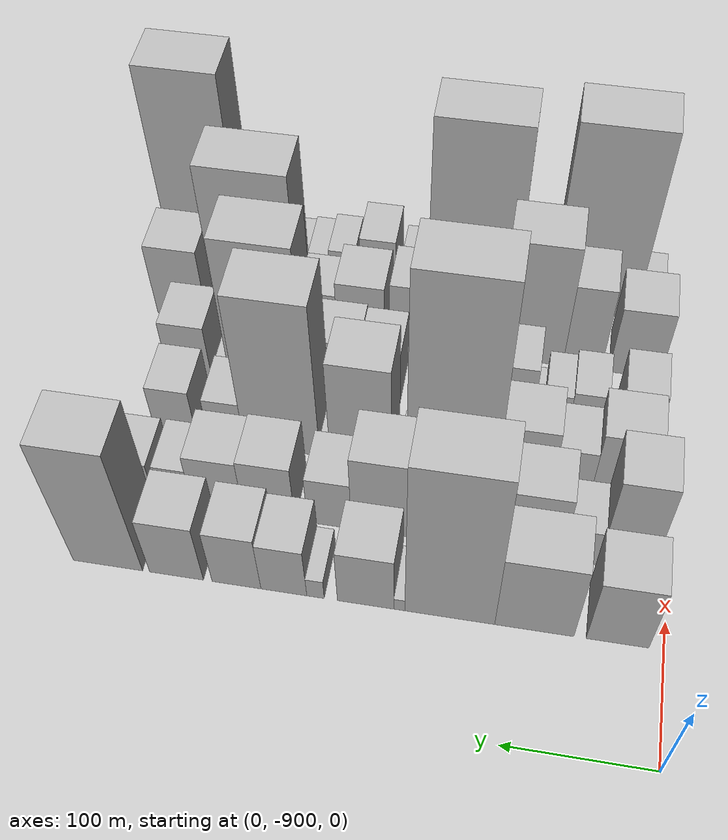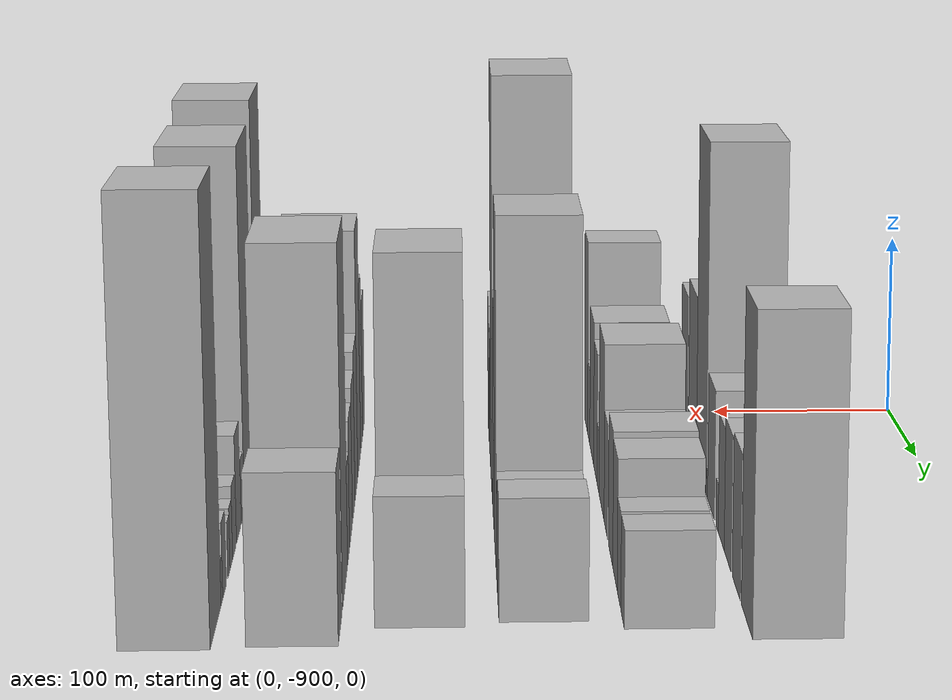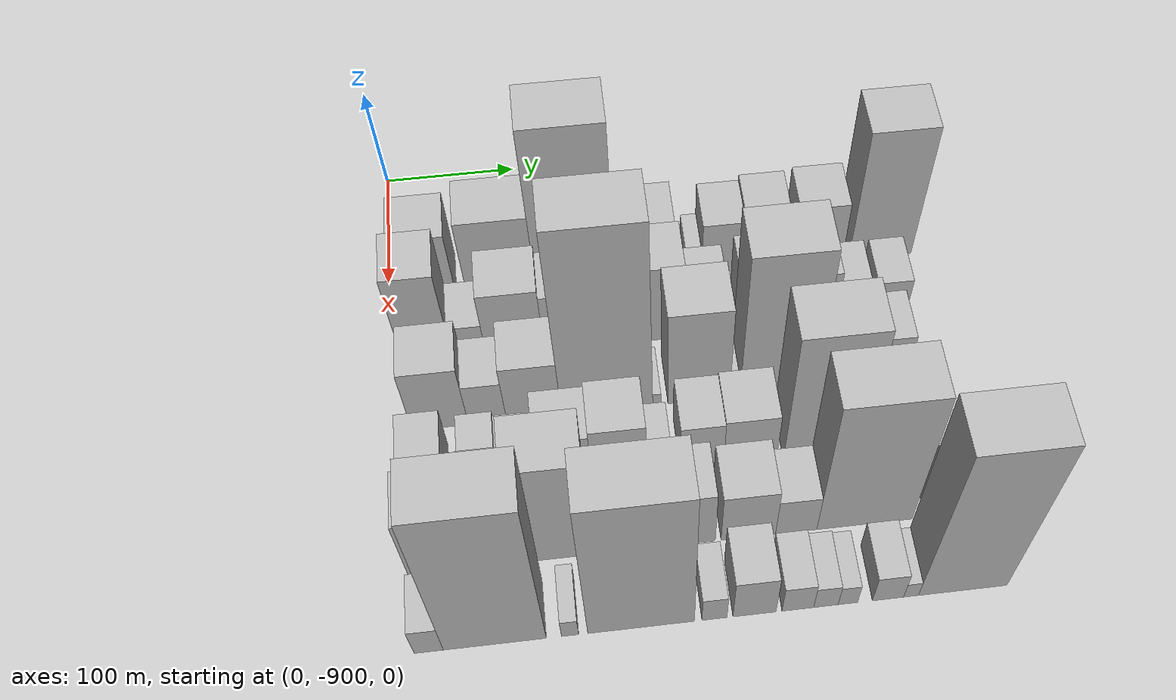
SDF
<sdf version="1.6">
 <world name="default">
  <model name="building_1">
   <static>1</static>
   <pose>100.0000 -869.5187 0 0.000000 0.000000 0.000000</pose>
   <link name="link">
    <pose>0 0 39.00 0 0 0</pose>
    <collision name="collision"><geometry><box><size>40.0000 40.9626 78.0000</size></box></geometry></collision>
    <visual name="visual">
     <cast_shadows>0</cast_shadows>
     <geometry><box><size>40.0000 40.9626 78.0000</size></box></geometry>
     <material>
      <script>
       <uri>model://HANNAS_wall/materials/scripts</uri>
       <uri>model://HANNAS_wall/materials/textures</uri>
       <name>vrc/HANNAS_wall</name>
      </script>
     </material>
    </visual>
   </link>
  </model>
  <model name="building_2">
   <static>1</static>
   <pose>100.0000 -814.8399 0 0.000000 0.000000 0.000000</pose>
   <link name="link">
    <pose>0 0 45.00 0 0 0</pose>
    <collision name="collision"><geometry><box><size>40.0000 52.3950 90.0000</size></box></geometry></collision>
    <visual name="visual">
     <cast_shadows>0</cast_shadows>
     <geometry><box><size>40.0000 52.3950 90.0000</size></box></geometry>
     <material>
      <script>
       <uri>model://HANNAS_wall/materials/scripts</uri>
       <uri>model://HANNAS_wall/materials/textures</uri>
       <name>vrc/HANNAS_wall</name>
      </script>
     </material>
    </visual>
   </link>
  </model>
  <model name="building_3">
   <static>1</static>
   <pose>100.0000 -758.5206 0 0.000000 0.000000 0.000000</pose>
   <link name="link">
    <pose>0 0 91.50 0 0 0</pose>
    <collision name="collision"><geometry><box><size>40.0000 60.2436 183.0000</size></box></geometry></collision>
    <visual name="visual">
     <cast_shadows>0</cast_shadows>
     <geometry><box><size>40.0000 60.2436 183.0000</size></box></geometry>
     <material>
      <script>
       <uri>model://HANNAS_wall/materials/scripts</uri>
       <uri>model://HANNAS_wall/materials/textures</uri>
       <name>vrc/HANNAS_wall</name>
      </script>
     </material>
    </visual>
   </link>
  </model>
  <model name="building_4">
   <static>1</static>
   <pose>100.0000 -724.6863 0 0.000000 0.000000 0.000000</pose>
   <link name="link">
    <pose>0 0 7.50 0 0 0</pose>
    <collision name="collision"><geometry><box><size>40.0000 7.4251 15.0000</size></box></geometry></collision>
    <visual name="visual">
     <cast_shadows>0</cast_shadows>
     <geometry><box><size>40.0000 7.4251 15.0000</size></box></geometry>
     <material>
      <script>
       <uri>model://HANNAS_wall/materials/scripts</uri>
       <uri>model://HANNAS_wall/materials/textures</uri>
       <name>vrc/HANNAS_wall</name>
      </script>
     </material>
    </visual>
   </link>
  </model>
  <model name="building_5">
   <static>1</static>
   <pose>100.0000 -701.8458 0 0.000000 0.000000 0.000000</pose>
   <link name="link">
    <pose>0 0 33.00 0 0 0</pose>
    <collision name="collision"><geometry><box><size>40.0000 38.2559 66.0000</size></box></geometry></collision>
    <visual name="visual">
     <cast_shadows>0</cast_shadows>
     <geometry><box><size>40.0000 38.2559 66.0000</size></box></geometry>
     <material>
      <script>
       <uri>model://HANNAS_wall/materials/scripts</uri>
       <uri>model://HANNAS_wall/materials/textures</uri>
       <name>vrc/HANNAS_wall</name>
      </script>
     </material>
    </visual>
   </link>
  </model>
  <model name="building_6">
   <static>1</static>
   <pose>100.0000 -667.7672 0 0.000000 0.000000 0.000000</pose>
   <link name="link">
    <pose>0 0 12.00 0 0 0</pose>
    <collision name="collision"><geometry><box><size>40.0000 11.9012 24.0000</size></box></geometry></collision>
    <visual name="visual">
     <cast_shadows>0</cast_shadows>
     <geometry><box><size>40.0000 11.9012 24.0000</size></box></geometry>
     <material>
      <script>
       <uri>model://HANNAS_wall/materials/scripts</uri>
       <uri>model://HANNAS_wall/materials/textures</uri>
       <name>vrc/HANNAS_wall</name>
      </script>
     </material>
    </visual>
   </link>
  </model>
  <model name="building_7">
   <static>1</static>
   <pose>100.0000 -646.0357 0 0.000000 0.000000 0.000000</pose>
   <link name="link">
    <pose>0 0 30.00 0 0 0</pose>
    <collision name="collision"><geometry><box><size>40.0000 31.5618 60.0000</size></box></geometry></collision>
    <visual name="visual">
     <cast_shadows>0</cast_shadows>
     <geometry><box><size>40.0000 31.5618 60.0000</size></box></geometry>
     <material>
      <script>
       <uri>model://HANNAS_wall/materials/scripts</uri>
       <uri>model://HANNAS_wall/materials/textures</uri>
       <name>vrc/HANNAS_wall</name>
      </script>
     </material>
    </visual>
   </link>
  </model>
  <model name="building_8">
   <static>1</static>
   <pose>100.0000 -613.3074 0 0.000000 0.000000 0.000000</pose>
   <link name="link">
    <pose>0 0 33.00 0 0 0</pose>
    <collision name="collision"><geometry><box><size>40.0000 33.8947 66.0000</size></box></geometry></collision>
    <visual name="visual">
     <cast_shadows>0</cast_shadows>
     <geometry><box><size>40.0000 33.8947 66.0000</size></box></geometry>
     <material>
      <script>
       <uri>model://HANNAS_wall/materials/scripts</uri>
       <uri>model://HANNAS_wall/materials/textures</uri>
       <name>vrc/HANNAS_wall</name>
      </script>
     </material>
    </visual>
   </link>
  </model>
  <model name="building_9">
   <static>1</static>
   <pose>100.0000 -571.5191 0 0.000000 0.000000 0.000000</pose>
   <link name="link">
    <pose>0 0 34.50 0 0 0</pose>
    <collision name="collision"><geometry><box><size>40.0000 37.6818 69.0000</size></box></geometry></collision>
    <visual name="visual">
     <cast_shadows>0</cast_shadows>
     <geometry><box><size>40.0000 37.6818 69.0000</size></box></geometry>
     <material>
      <script>
       <uri>model://HANNAS_wall/materials/scripts</uri>
       <uri>model://HANNAS_wall/materials/textures</uri>
       <name>vrc/HANNAS_wall</name>
      </script>
     </material>
    </visual>
   </link>
  </model>
  <model name="building_10">
   <static>1</static>
   <pose>100.0000 -523.1911 0 0.000000 0.000000 0.000000</pose>
   <link name="link">
    <pose>0 0 73.50 0 0 0</pose>
    <collision name="collision"><geometry><box><size>40.0000 48.9742 147.0000</size></box></geometry></collision>
    <visual name="visual">
     <cast_shadows>0</cast_shadows>
     <geometry><box><size>40.0000 48.9742 147.0000</size></box></geometry>
     <material>
      <script>
       <uri>model://HANNAS_wall/materials/scripts</uri>
       <uri>model://HANNAS_wall/materials/textures</uri>
       <name>vrc/HANNAS_wall</name>
      </script>
     </material>
    </visual>
   </link>
  </model>
  <model name="building_50">
   <static>1</static>
   <pose>155.0000 -871.8700 0 0.000000 0.000000 0.000000</pose>
   <link name="link">
    <pose>0 0 54.00 0 0 0</pose>
    <collision name="collision"><geometry><box><size>40.0000 36.2600 108.0000</size></box></geometry></collision>
    <visual name="visual">
     <cast_shadows>0</cast_shadows>
     <geometry><box><size>40.0000 36.2600 108.0000</size></box></geometry>
     <material>
      <script>
       <uri>model://HANNAS_wall/materials/scripts</uri>
       <uri>model://HANNAS_wall/materials/textures</uri>
       <name>vrc/HANNAS_wall</name>
      </script>
     </material>
    </visual>
   </link>
  </model>
  <model name="building_51">
   <static>1</static>
   <pose>155.0000 -841.4327 0 0.000000 0.000000 0.000000</pose>
   <link name="link">
    <pose>0 0 21.00 0 0 0</pose>
    <collision name="collision"><geometry><box><size>40.0000 24.6146 42.0000</size></box></geometry></collision>
    <visual name="visual">
     <cast_shadows>0</cast_shadows>
     <geometry><box><size>40.0000 24.6146 42.0000</size></box></geometry>
     <material>
      <script>
       <uri>model://HANNAS_wall/materials/scripts</uri>
       <uri>model://HANNAS_wall/materials/textures</uri>
       <name>vrc/HANNAS_wall</name>
      </script>
     </material>
    </visual>
   </link>
  </model>
  <model name="building_52">
   <static>1</static>
   <pose>155.0000 -807.6888 0 0.000000 0.000000 0.000000</pose>
   <link name="link">
    <pose>0 0 39.00 0 0 0</pose>
    <collision name="collision"><geometry><box><size>40.0000 42.8733 78.0000</size></box></geometry></collision>
    <visual name="visual">
     <cast_shadows>0</cast_shadows>
     <geometry><box><size>40.0000 42.8733 78.0000</size></box></geometry>
     <material>
      <script>
       <uri>model://HANNAS_wall/materials/scripts</uri>
       <uri>model://HANNAS_wall/materials/textures</uri>
       <name>vrc/HANNAS_wall</name>
      </script>
     </material>
    </visual>
   </link>
  </model>
  <model name="building_53">
   <static>1</static>
   <pose>155.0000 -768.3859 0 0.000000 0.000000 0.000000</pose>
   <link name="link">
    <pose>0 0 34.50 0 0 0</pose>
    <collision name="collision"><geometry><box><size>40.0000 35.7324 69.0000</size></box></geometry></collision>
    <visual name="visual">
     <cast_shadows>0</cast_shadows>
     <geometry><box><size>40.0000 35.7324 69.0000</size></box></geometry>
     <material>
      <script>
       <uri>model://HANNAS_wall/materials/scripts</uri>
       <uri>model://HANNAS_wall/materials/textures</uri>
       <name>vrc/HANNAS_wall</name>
      </script>
     </material>
    </visual>
   </link>
  </model>
  <model name="building_54">
   <static>1</static>
   <pose>155.0000 -740.6411 0 0.000000 0.000000 0.000000</pose>
   <link name="link">
    <pose>0 0 16.50 0 0 0</pose>
    <collision name="collision"><geometry><box><size>40.0000 19.7573 33.0000</size></box></geometry></collision>
    <visual name="visual">
     <cast_shadows>0</cast_shadows>
     <geometry><box><size>40.0000 19.7573 33.0000</size></box></geometry>
     <material>
      <script>
       <uri>model://HANNAS_wall/materials/scripts</uri>
       <uri>model://HANNAS_wall/materials/textures</uri>
       <name>vrc/HANNAS_wall</name>
      </script>
     </material>
    </visual>
   </link>
  </model>
  <model name="building_55">
   <static>1</static>
   <pose>155.0000 -706.4413 0 0.000000 0.000000 0.000000</pose>
   <link name="link">
    <pose>0 0 45.00 0 0 0</pose>
    <collision name="collision"><geometry><box><size>40.0000 48.6423 90.0000</size></box></geometry></collision>
    <visual name="visual">
     <cast_shadows>0</cast_shadows>
     <geometry><box><size>40.0000 48.6423 90.0000</size></box></geometry>
     <material>
      <script>
       <uri>model://HANNAS_wall/materials/scripts</uri>
       <uri>model://HANNAS_wall/materials/textures</uri>
       <name>vrc/HANNAS_wall</name>
      </script>
     </material>
    </visual>
   </link>
  </model>
  <model name="building_56">
   <static>1</static>
   <pose>155.0000 -666.5677 0 0.000000 0.000000 0.000000</pose>
   <link name="link">
    <pose>0 0 28.50 0 0 0</pose>
    <collision name="collision"><geometry><box><size>40.0000 31.1049 57.0000</size></box></geometry></collision>
    <visual name="visual">
     <cast_shadows>0</cast_shadows>
     <geometry><box><size>40.0000 31.1049 57.0000</size></box></geometry>
     <material>
      <script>
       <uri>model://HANNAS_wall/materials/scripts</uri>
       <uri>model://HANNAS_wall/materials/textures</uri>
       <name>vrc/HANNAS_wall</name>
      </script>
     </material>
    </visual>
   </link>
  </model>
  <model name="building_57">
   <static>1</static>
   <pose>155.0000 -623.4818 0 0.000000 0.000000 0.000000</pose>
   <link name="link">
    <pose>0 0 33.00 0 0 0</pose>
    <collision name="collision"><geometry><box><size>40.0000 37.0669 66.0000</size></box></geometry></collision>
    <visual name="visual">
     <cast_shadows>0</cast_shadows>
     <geometry><box><size>40.0000 37.0669 66.0000</size></box></geometry>
     <material>
      <script>
       <uri>model://HANNAS_wall/materials/scripts</uri>
       <uri>model://HANNAS_wall/materials/textures</uri>
       <name>vrc/HANNAS_wall</name>
      </script>
     </material>
    </visual>
   </link>
  </model>
  <model name="building_58">
   <static>1</static>
   <pose>155.0000 -586.4904 0 0.000000 0.000000 0.000000</pose>
   <link name="link">
    <pose>0 0 31.50 0 0 0</pose>
    <collision name="collision"><geometry><box><size>40.0000 36.9159 63.0000</size></box></geometry></collision>
    <visual name="visual">
     <cast_shadows>0</cast_shadows>
     <geometry><box><size>40.0000 36.9159 63.0000</size></box></geometry>
     <material>
      <script>
       <uri>model://HANNAS_wall/materials/scripts</uri>
       <uri>model://HANNAS_wall/materials/textures</uri>
       <name>vrc/HANNAS_wall</name>
      </script>
     </material>
    </visual>
   </link>
  </model>
  <model name="building_59">
   <static>1</static>
   <pose>155.0000 -556.2455 0 0.000000 0.000000 0.000000</pose>
   <link name="link">
    <pose>0 0 22.50 0 0 0</pose>
    <collision name="collision"><geometry><box><size>40.0000 23.5738 45.0000</size></box></geometry></collision>
    <visual name="visual">
     <cast_shadows>0</cast_shadows>
     <geometry><box><size>40.0000 23.5738 45.0000</size></box></geometry>
     <material>
      <script>
       <uri>model://HANNAS_wall/materials/scripts</uri>
       <uri>model://HANNAS_wall/materials/textures</uri>
       <name>vrc/HANNAS_wall</name>
      </script>
     </material>
    </visual>
   </link>
  </model>
  <model name="building_60">
   <static>1</static>
   <pose>155.0000 -527.4854 0 0.000000 0.000000 0.000000</pose>
   <link name="link">
    <pose>0 0 22.50 0 0 0</pose>
    <collision name="collision"><geometry><box><size>40.0000 25.9465 45.0000</size></box></geometry></collision>
    <visual name="visual">
     <cast_shadows>0</cast_shadows>
     <geometry><box><size>40.0000 25.9465 45.0000</size></box></geometry>
     <material>
      <script>
       <uri>model://HANNAS_wall/materials/scripts</uri>
       <uri>model://HANNAS_wall/materials/textures</uri>
       <name>vrc/HANNAS_wall</name>
      </script>
     </material>
    </visual>
   </link>
  </model>
  <model name="building_101">
   <static>1</static>
   <pose>210.0000 -864.8608 0 0.000000 0.000000 0.000000</pose>
   <link name="link">
    <pose>0 0 37.50 0 0 0</pose>
    <collision name="collision"><geometry><box><size>40.0000 40.2783 75.0000</size></box></geometry></collision>
    <visual name="visual">
     <cast_shadows>0</cast_shadows>
     <geometry><box><size>40.0000 40.2783 75.0000</size></box></geometry>
     <material>
      <script>
       <uri>model://HANNAS_wall/materials/scripts</uri>
       <uri>model://HANNAS_wall/materials/textures</uri>
       <name>vrc/HANNAS_wall</name>
      </script>
     </material>
    </visual>
   </link>
  </model>
  <model name="building_102">
   <static>1</static>
   <pose>210.0000 -831.0557 0 0.000000 0.000000 0.000000</pose>
   <link name="link">
    <pose>0 0 25.50 0 0 0</pose>
    <collision name="collision"><geometry><box><size>40.0000 27.3321 51.0000</size></box></geometry></collision>
    <visual name="visual">
     <cast_shadows>0</cast_shadows>
     <geometry><box><size>40.0000 27.3321 51.0000</size></box></geometry>
     <material>
      <script>
       <uri>model://HANNAS_wall/materials/scripts</uri>
       <uri>model://HANNAS_wall/materials/textures</uri>
       <name>vrc/HANNAS_wall</name>
      </script>
     </material>
    </visual>
   </link>
  </model>
  <model name="building_103">
   <static>1</static>
   <pose>210.0000 -797.6632 0 0.000000 0.000000 0.000000</pose>
   <link name="link">
    <pose>0 0 34.50 0 0 0</pose>
    <collision name="collision"><geometry><box><size>40.0000 39.4527 69.0000</size></box></geometry></collision>
    <visual name="visual">
     <cast_shadows>0</cast_shadows>
     <geometry><box><size>40.0000 39.4527 69.0000</size></box></geometry>
     <material>
      <script>
       <uri>model://HANNAS_wall/materials/scripts</uri>
       <uri>model://HANNAS_wall/materials/textures</uri>
       <name>vrc/HANNAS_wall</name>
      </script>
     </material>
    </visual>
   </link>
  </model>
  <model name="building_104">
   <static>1</static>
   <pose>210.0000 -745.0322 0 0.000000 0.000000 0.000000</pose>
   <link name="link">
    <pose>0 0 109.50 0 0 0</pose>
    <collision name="collision"><geometry><box><size>40.0000 65.8093 219.0000</size></box></geometry></collision>
    <visual name="visual">
     <cast_shadows>0</cast_shadows>
     <geometry><box><size>40.0000 65.8093 219.0000</size></box></geometry>
     <material>
      <script>
       <uri>model://HANNAS_wall/materials/scripts</uri>
       <uri>model://HANNAS_wall/materials/textures</uri>
       <name>vrc/HANNAS_wall</name>
      </script>
     </material>
    </visual>
   </link>
  </model>
  <model name="building_105">
   <static>1</static>
   <pose>210.0000 -709.1058 0 0.000000 0.000000 0.000000</pose>
   <link name="link">
    <pose>0 0 7.50 0 0 0</pose>
    <collision name="collision"><geometry><box><size>40.0000 6.0436 15.0000</size></box></geometry></collision>
    <visual name="visual">
     <cast_shadows>0</cast_shadows>
     <geometry><box><size>40.0000 6.0436 15.0000</size></box></geometry>
     <material>
      <script>
       <uri>model://HANNAS_wall/materials/scripts</uri>
       <uri>model://HANNAS_wall/materials/textures</uri>
       <name>vrc/HANNAS_wall</name>
      </script>
     </material>
    </visual>
   </link>
  </model>
  <model name="building_106">
   <static>1</static>
   <pose>210.0000 -678.6502 0 0.000000 0.000000 0.000000</pose>
   <link name="link">
    <pose>0 0 57.00 0 0 0</pose>
    <collision name="collision"><geometry><box><size>40.0000 44.8677 114.0000</size></box></geometry></collision>
    <visual name="visual">
     <cast_shadows>0</cast_shadows>
     <geometry><box><size>40.0000 44.8677 114.0000</size></box></geometry>
     <material>
      <script>
       <uri>model://HANNAS_wall/materials/scripts</uri>
       <uri>model://HANNAS_wall/materials/textures</uri>
       <name>vrc/HANNAS_wall</name>
      </script>
     </material>
    </visual>
   </link>
  </model>
  <model name="building_107">
   <static>1</static>
   <pose>210.0000 -652.4173 0 0.000000 0.000000 0.000000</pose>
   <link name="link">
    <pose>0 0 9.00 0 0 0</pose>
    <collision name="collision"><geometry><box><size>40.0000 7.5981 18.0000</size></box></geometry></collision>
    <visual name="visual">
     <cast_shadows>0</cast_shadows>
     <geometry><box><size>40.0000 7.5981 18.0000</size></box></geometry>
     <material>
      <script>
       <uri>model://HANNAS_wall/materials/scripts</uri>
       <uri>model://HANNAS_wall/materials/textures</uri>
       <name>vrc/HANNAS_wall</name>
      </script>
     </material>
    </visual>
   </link>
  </model>
  <model name="building_108">
   <static>1</static>
   <pose>210.0000 -620.5702 0 0.000000 0.000000 0.000000</pose>
   <link name="link">
    <pose>0 0 85.50 0 0 0</pose>
    <collision name="collision"><geometry><box><size>40.0000 56.0961 171.0000</size></box></geometry></collision>
    <visual name="visual">
     <cast_shadows>0</cast_shadows>
     <geometry><box><size>40.0000 56.0961 171.0000</size></box></geometry>
     <material>
      <script>
       <uri>model://HANNAS_wall/materials/scripts</uri>
       <uri>model://HANNAS_wall/materials/textures</uri>
       <name>vrc/HANNAS_wall</name>
      </script>
     </material>
    </visual>
   </link>
  </model>
  <model name="building_109">
   <static>1</static>
   <pose>210.0000 -579.2036 0 0.000000 0.000000 0.000000</pose>
   <link name="link">
    <pose>0 0 25.50 0 0 0</pose>
    <collision name="collision"><geometry><box><size>40.0000 26.6370 51.0000</size></box></geometry></collision>
    <visual name="visual">
     <cast_shadows>0</cast_shadows>
     <geometry><box><size>40.0000 26.6370 51.0000</size></box></geometry>
     <material>
      <script>
       <uri>model://HANNAS_wall/materials/scripts</uri>
       <uri>model://HANNAS_wall/materials/textures</uri>
       <name>vrc/HANNAS_wall</name>
      </script>
     </material>
    </visual>
   </link>
  </model>
  <model name="building_110">
   <static>1</static>
   <pose>210.0000 -541.3025 0 0.000000 0.000000 0.000000</pose>
   <link name="link">
    <pose>0 0 28.50 0 0 0</pose>
    <collision name="collision"><geometry><box><size>40.0000 31.1652 57.0000</size></box></geometry></collision>
    <visual name="visual">
     <cast_shadows>0</cast_shadows>
     <geometry><box><size>40.0000 31.1652 57.0000</size></box></geometry>
     <material>
      <script>
       <uri>model://HANNAS_wall/materials/scripts</uri>
       <uri>model://HANNAS_wall/materials/textures</uri>
       <name>vrc/HANNAS_wall</name>
      </script>
     </material>
    </visual>
   </link>
  </model>
  <model name="building_150">
   <static>1</static>
   <pose>265.0000 -874.9586 0 0.000000 0.000000 0.000000</pose>
   <link name="link">
    <pose>0 0 25.50 0 0 0</pose>
    <collision name="collision"><geometry><box><size>40.0000 30.0829 51.0000</size></box></geometry></collision>
    <visual name="visual">
     <cast_shadows>0</cast_shadows>
     <geometry><box><size>40.0000 30.0829 51.0000</size></box></geometry>
     <material>
      <script>
       <uri>model://HANNAS_wall/materials/scripts</uri>
       <uri>model://HANNAS_wall/materials/textures</uri>
       <name>vrc/HANNAS_wall</name>
      </script>
     </material>
    </visual>
   </link>
  </model>
  <model name="building_151">
   <static>1</static>
   <pose>265.0000 -837.3926 0 0.000000 0.000000 0.000000</pose>
   <link name="link">
    <pose>0 0 21.00 0 0 0</pose>
    <collision name="collision"><geometry><box><size>40.0000 25.0490 42.0000</size></box></geometry></collision>
    <visual name="visual">
     <cast_shadows>0</cast_shadows>
     <geometry><box><size>40.0000 25.0490 42.0000</size></box></geometry>
     <material>
      <script>
       <uri>model://HANNAS_wall/materials/scripts</uri>
       <uri>model://HANNAS_wall/materials/textures</uri>
       <name>vrc/HANNAS_wall</name>
      </script>
     </material>
    </visual>
   </link>
  </model>
  <model name="building_152">
   <static>1</static>
   <pose>265.0000 -814.8458 0 0.000000 0.000000 0.000000</pose>
   <link name="link">
    <pose>0 0 18.00 0 0 0</pose>
    <collision name="collision"><geometry><box><size>40.0000 20.0446 36.0000</size></box></geometry></collision>
    <visual name="visual">
     <cast_shadows>0</cast_shadows>
     <geometry><box><size>40.0000 20.0446 36.0000</size></box></geometry>
     <material>
      <script>
       <uri>model://HANNAS_wall/materials/scripts</uri>
       <uri>model://HANNAS_wall/materials/textures</uri>
       <name>vrc/HANNAS_wall</name>
      </script>
     </material>
    </visual>
   </link>
  </model>
  <model name="building_153">
   <static>1</static>
   <pose>265.0000 -801.4315 0 0.000000 0.000000 0.000000</pose>
   <link name="link">
    <pose>0 0 7.50 0 0 0</pose>
    <collision name="collision"><geometry><box><size>40.0000 6.7841 15.0000</size></box></geometry></collision>
    <visual name="visual">
     <cast_shadows>0</cast_shadows>
     <geometry><box><size>40.0000 6.7841 15.0000</size></box></geometry>
     <material>
      <script>
       <uri>model://HANNAS_wall/materials/scripts</uri>
       <uri>model://HANNAS_wall/materials/textures</uri>
       <name>vrc/HANNAS_wall</name>
      </script>
     </material>
    </visual>
   </link>
  </model>
  <model name="building_154">
   <static>1</static>
   <pose>265.0000 -779.5476 0 0.000000 0.000000 0.000000</pose>
   <link name="link">
    <pose>0 0 31.50 0 0 0</pose>
    <collision name="collision"><geometry><box><size>40.0000 36.9836 63.0000</size></box></geometry></collision>
    <visual name="visual">
     <cast_shadows>0</cast_shadows>
     <geometry><box><size>40.0000 36.9836 63.0000</size></box></geometry>
     <material>
      <script>
       <uri>model://HANNAS_wall/materials/scripts</uri>
       <uri>model://HANNAS_wall/materials/textures</uri>
       <name>vrc/HANNAS_wall</name>
      </script>
     </material>
    </visual>
   </link>
  </model>
  <model name="building_155">
   <static>1</static>
   <pose>265.0000 -741.6447 0 0.000000 0.000000 0.000000</pose>
   <link name="link">
    <pose>0 0 34.50 0 0 0</pose>
    <collision name="collision"><geometry><box><size>40.0000 38.8221 69.0000</size></box></geometry></collision>
    <visual name="visual">
     <cast_shadows>0</cast_shadows>
     <geometry><box><size>40.0000 38.8221 69.0000</size></box></geometry>
     <material>
      <script>
       <uri>model://HANNAS_wall/materials/scripts</uri>
       <uri>model://HANNAS_wall/materials/textures</uri>
       <name>vrc/HANNAS_wall</name>
      </script>
     </material>
    </visual>
   </link>
  </model>
  <model name="building_156">
   <static>1</static>
   <pose>265.0000 -713.5278 0 0.000000 0.000000 0.000000</pose>
   <link name="link">
    <pose>0 0 15.00 0 0 0</pose>
    <collision name="collision"><geometry><box><size>40.0000 17.4118 30.0000</size></box></geometry></collision>
    <visual name="visual">
     <cast_shadows>0</cast_shadows>
     <geometry><box><size>40.0000 17.4118 30.0000</size></box></geometry>
     <material>
      <script>
       <uri>model://HANNAS_wall/materials/scripts</uri>
       <uri>model://HANNAS_wall/materials/textures</uri>
       <name>vrc/HANNAS_wall</name>
      </script>
     </material>
    </visual>
   </link>
  </model>
  <model name="building_157">
   <static>1</static>
   <pose>265.0000 -683.5769 0 0.000000 0.000000 0.000000</pose>
   <link name="link">
    <pose>0 0 30.00 0 0 0</pose>
    <collision name="collision"><geometry><box><size>40.0000 30.4899 60.0000</size></box></geometry></collision>
    <visual name="visual">
     <cast_shadows>0</cast_shadows>
     <geometry><box><size>40.0000 30.4899 60.0000</size></box></geometry>
     <material>
      <script>
       <uri>model://HANNAS_wall/materials/scripts</uri>
       <uri>model://HANNAS_wall/materials/textures</uri>
       <name>vrc/HANNAS_wall</name>
      </script>
     </material>
    </visual>
   </link>
  </model>
  <model name="building_158">
   <static>1</static>
   <pose>265.0000 -649.5910 0 0.000000 0.000000 0.000000</pose>
   <link name="link">
    <pose>0 0 31.50 0 0 0</pose>
    <collision name="collision"><geometry><box><size>40.0000 37.4817 63.0000</size></box></geometry></collision>
    <visual name="visual">
     <cast_shadows>0</cast_shadows>
     <geometry><box><size>40.0000 37.4817 63.0000</size></box></geometry>
     <material>
      <script>
       <uri>model://HANNAS_wall/materials/scripts</uri>
       <uri>model://HANNAS_wall/materials/textures</uri>
       <name>vrc/HANNAS_wall</name>
      </script>
     </material>
    </visual>
   </link>
  </model>
  <model name="building_159">
   <static>1</static>
   <pose>265.0000 -597.0273 0 0.000000 0.000000 0.000000</pose>
   <link name="link">
    <pose>0 0 79.50 0 0 0</pose>
    <collision name="collision"><geometry><box><size>40.0000 57.6457 159.0000</size></box></geometry></collision>
    <visual name="visual">
     <cast_shadows>0</cast_shadows>
     <geometry><box><size>40.0000 57.6457 159.0000</size></box></geometry>
     <material>
      <script>
       <uri>model://HANNAS_wall/materials/scripts</uri>
       <uri>model://HANNAS_wall/materials/textures</uri>
       <name>vrc/HANNAS_wall</name>
      </script>
     </material>
    </visual>
   </link>
  </model>
  <model name="building_160">
   <static>1</static>
   <pose>265.0000 -563.0442 0 0.000000 0.000000 0.000000</pose>
   <link name="link">
    <pose>0 0 10.50 0 0 0</pose>
    <collision name="collision"><geometry><box><size>40.0000 10.3204 21.0000</size></box></geometry></collision>
    <visual name="visual">
     <cast_shadows>0</cast_shadows>
     <geometry><box><size>40.0000 10.3204 21.0000</size></box></geometry>
     <material>
      <script>
       <uri>model://HANNAS_wall/materials/scripts</uri>
       <uri>model://HANNAS_wall/materials/textures</uri>
       <name>vrc/HANNAS_wall</name>
      </script>
     </material>
    </visual>
   </link>
  </model>
  <model name="building_161">
   <static>1</static>
   <pose>265.0000 -536.7634 0 0.000000 0.000000 0.000000</pose>
   <link name="link">
    <pose>0 0 30.00 0 0 0</pose>
    <collision name="collision"><geometry><box><size>40.0000 34.2413 60.0000</size></box></geometry></collision>
    <visual name="visual">
     <cast_shadows>0</cast_shadows>
     <geometry><box><size>40.0000 34.2413 60.0000</size></box></geometry>
     <material>
      <script>
       <uri>model://HANNAS_wall/materials/scripts</uri>
       <uri>model://HANNAS_wall/materials/textures</uri>
       <name>vrc/HANNAS_wall</name>
      </script>
     </material>
    </visual>
   </link>
  </model>
  <model name="building_207">
   <static>1</static>
   <pose>320.0000 -870.6493 0 0.000000 0.000000 0.000000</pose>
   <link name="link">
    <pose>0 0 37.50 0 0 0</pose>
    <collision name="collision"><geometry><box><size>40.0000 38.7014 75.0000</size></box></geometry></collision>
    <visual name="visual">
     <cast_shadows>0</cast_shadows>
     <geometry><box><size>40.0000 38.7014 75.0000</size></box></geometry>
     <material>
      <script>
       <uri>model://HANNAS_wall/materials/scripts</uri>
       <uri>model://HANNAS_wall/materials/textures</uri>
       <name>vrc/HANNAS_wall</name>
      </script>
     </material>
    </visual>
   </link>
  </model>
  <model name="building_208">
   <static>1</static>
   <pose>320.0000 -830.6268 0 0.000000 0.000000 0.000000</pose>
   <link name="link">
    <pose>0 0 46.50 0 0 0</pose>
    <collision name="collision"><geometry><box><size>40.0000 29.3436 93.0000</size></box></geometry></collision>
    <visual name="visual">
     <cast_shadows>0</cast_shadows>
     <geometry><box><size>40.0000 29.3436 93.0000</size></box></geometry>
     <material>
      <script>
       <uri>model://HANNAS_wall/materials/scripts</uri>
       <uri>model://HANNAS_wall/materials/textures</uri>
       <name>vrc/HANNAS_wall</name>
      </script>
     </material>
    </visual>
   </link>
  </model>
  <model name="building_209">
   <static>1</static>
   <pose>320.0000 -790.8643 0 0.000000 0.000000 0.000000</pose>
   <link name="link">
    <pose>0 0 66.00 0 0 0</pose>
    <collision name="collision"><geometry><box><size>40.0000 50.1814 132.0000</size></box></geometry></collision>
    <visual name="visual">
     <cast_shadows>0</cast_shadows>
     <geometry><box><size>40.0000 50.1814 132.0000</size></box></geometry>
     <material>
      <script>
       <uri>model://HANNAS_wall/materials/scripts</uri>
       <uri>model://HANNAS_wall/materials/textures</uri>
       <name>vrc/HANNAS_wall</name>
      </script>
     </material>
    </visual>
   </link>
  </model>
  <model name="building_210">
   <static>1</static>
   <pose>320.0000 -743.6925 0 0.000000 0.000000 0.000000</pose>
   <link name="link">
    <pose>0 0 39.00 0 0 0</pose>
    <collision name="collision"><geometry><box><size>40.0000 44.1623 78.0000</size></box></geometry></collision>
    <visual name="visual">
     <cast_shadows>0</cast_shadows>
     <geometry><box><size>40.0000 44.1623 78.0000</size></box></geometry>
     <material>
      <script>
       <uri>model://HANNAS_wall/materials/scripts</uri>
       <uri>model://HANNAS_wall/materials/textures</uri>
       <name>vrc/HANNAS_wall</name>
      </script>
     </material>
    </visual>
   </link>
  </model>
  <model name="building_211">
   <static>1</static>
   <pose>320.0000 -701.7098 0 0.000000 0.000000 0.000000</pose>
   <link name="link">
    <pose>0 0 34.50 0 0 0</pose>
    <collision name="collision"><geometry><box><size>40.0000 39.8031 69.0000</size></box></geometry></collision>
    <visual name="visual">
     <cast_shadows>0</cast_shadows>
     <geometry><box><size>40.0000 39.8031 69.0000</size></box></geometry>
     <material>
      <script>
       <uri>model://HANNAS_wall/materials/scripts</uri>
       <uri>model://HANNAS_wall/materials/textures</uri>
       <name>vrc/HANNAS_wall</name>
      </script>
     </material>
    </visual>
   </link>
  </model>
  <model name="building_212">
   <static>1</static>
   <pose>320.0000 -659.0526 0 0.000000 0.000000 0.000000</pose>
   <link name="link">
    <pose>0 0 31.50 0 0 0</pose>
    <collision name="collision"><geometry><box><size>40.0000 37.5112 63.0000</size></box></geometry></collision>
    <visual name="visual">
     <cast_shadows>0</cast_shadows>
     <geometry><box><size>40.0000 37.5112 63.0000</size></box></geometry>
     <material>
      <script>
       <uri>model://HANNAS_wall/materials/scripts</uri>
       <uri>model://HANNAS_wall/materials/textures</uri>
       <name>vrc/HANNAS_wall</name>
      </script>
     </material>
    </visual>
   </link>
  </model>
  <model name="building_213">
   <static>1</static>
   <pose>320.0000 -626.0123 0 0.000000 0.000000 0.000000</pose>
   <link name="link">
    <pose>0 0 24.00 0 0 0</pose>
    <collision name="collision"><geometry><box><size>40.0000 28.5694 48.0000</size></box></geometry></collision>
    <visual name="visual">
     <cast_shadows>0</cast_shadows>
     <geometry><box><size>40.0000 28.5694 48.0000</size></box></geometry>
     <material>
      <script>
       <uri>model://HANNAS_wall/materials/scripts</uri>
       <uri>model://HANNAS_wall/materials/textures</uri>
       <name>vrc/HANNAS_wall</name>
      </script>
     </material>
    </visual>
   </link>
  </model>
  <model name="building_214">
   <static>1</static>
   <pose>320.0000 -578.5166 0 0.000000 0.000000 0.000000</pose>
   <link name="link">
    <pose>0 0 84.00 0 0 0</pose>
    <collision name="collision"><geometry><box><size>40.0000 66.4219 168.0000</size></box></geometry></collision>
    <visual name="visual">
     <cast_shadows>0</cast_shadows>
     <geometry><box><size>40.0000 66.4219 168.0000</size></box></geometry>
     <material>
      <script>
       <uri>model://HANNAS_wall/materials/scripts</uri>
       <uri>model://HANNAS_wall/materials/textures</uri>
       <name>vrc/HANNAS_wall</name>
      </script>
     </material>
    </visual>
   </link>
  </model>
  <model name="building_215">
   <static>1</static>
   <pose>320.0000 -516.0950 0 0.000000 0.000000 0.000000</pose>
   <link name="link">
    <pose>0 0 39.00 0 0 0</pose>
    <collision name="collision"><geometry><box><size>40.0000 40.4213 78.0000</size></box></geometry></collision>
    <visual name="visual">
     <cast_shadows>0</cast_shadows>
     <geometry><box><size>40.0000 40.4213 78.0000</size></box></geometry>
     <material>
      <script>
       <uri>model://HANNAS_wall/materials/scripts</uri>
       <uri>model://HANNAS_wall/materials/textures</uri>
       <name>vrc/HANNAS_wall</name>
      </script>
     </material>
    </visual>
   </link>
  </model>
  <model name="building_261">
   <static>1</static>
   <pose>375.0000 -877.5309 0 0.000000 0.000000 0.000000</pose>
   <link name="link">
    <pose>0 0 18.00 0 0 0</pose>
    <collision name="collision"><geometry><box><size>40.0000 18.9383 36.0000</size></box></geometry></collision>
    <visual name="visual">
     <cast_shadows>0</cast_shadows>
     <geometry><box><size>40.0000 18.9383 36.0000</size></box></geometry>
     <material>
      <script>
       <uri>model://HANNAS_wall/materials/scripts</uri>
       <uri>model://HANNAS_wall/materials/textures</uri>
       <name>vrc/HANNAS_wall</name>
      </script>
     </material>
    </visual>
   </link>
  </model>
  <model name="building_262">
   <static>1</static>
   <pose>375.0000 -834.4927 0 0.000000 0.000000 0.000000</pose>
   <link name="link">
    <pose>0 0 97.50 0 0 0</pose>
    <collision name="collision"><geometry><box><size>40.0000 67.1381 195.0000</size></box></geometry></collision>
    <visual name="visual">
     <cast_shadows>0</cast_shadows>
     <geometry><box><size>40.0000 67.1381 195.0000</size></box></geometry>
     <material>
      <script>
       <uri>model://HANNAS_wall/materials/scripts</uri>
       <uri>model://HANNAS_wall/materials/textures</uri>
       <name>vrc/HANNAS_wall</name>
      </script>
     </material>
    </visual>
   </link>
  </model>
  <model name="building_263">
   <static>1</static>
   <pose>375.0000 -785.3125 0 0.000000 0.000000 0.000000</pose>
   <link name="link">
    <pose>0 0 12.00 0 0 0</pose>
    <collision name="collision"><geometry><box><size>40.0000 11.2223 24.0000</size></box></geometry></collision>
    <visual name="visual">
     <cast_shadows>0</cast_shadows>
     <geometry><box><size>40.0000 11.2223 24.0000</size></box></geometry>
     <material>
      <script>
       <uri>model://HANNAS_wall/materials/scripts</uri>
       <uri>model://HANNAS_wall/materials/textures</uri>
       <name>vrc/HANNAS_wall</name>
      </script>
     </material>
    </visual>
   </link>
  </model>
  <model name="building_264">
   <static>1</static>
   <pose>375.0000 -738.4625 0 0.000000 0.000000 0.000000</pose>
   <link name="link">
    <pose>0 0 93.00 0 0 0</pose>
    <collision name="collision"><geometry><box><size>40.0000 70.4778 186.0000</size></box></geometry></collision>
    <visual name="visual">
     <cast_shadows>0</cast_shadows>
     <geometry><box><size>40.0000 70.4778 186.0000</size></box></geometry>
     <material>
      <script>
       <uri>model://HANNAS_wall/materials/scripts</uri>
       <uri>model://HANNAS_wall/materials/textures</uri>
       <name>vrc/HANNAS_wall</name>
      </script>
     </material>
    </visual>
   </link>
  </model>
  <model name="building_265">
   <static>1</static>
   <pose>375.0000 -689.9203 0 0.000000 0.000000 0.000000</pose>
   <link name="link">
    <pose>0 0 16.50 0 0 0</pose>
    <collision name="collision"><geometry><box><size>40.0000 16.6066 33.0000</size></box></geometry></collision>
    <visual name="visual">
     <cast_shadows>0</cast_shadows>
     <geometry><box><size>40.0000 16.6066 33.0000</size></box></geometry>
     <material>
      <script>
       <uri>model://HANNAS_wall/materials/scripts</uri>
       <uri>model://HANNAS_wall/materials/textures</uri>
       <name>vrc/HANNAS_wall</name>
      </script>
     </material>
    </visual>
   </link>
  </model>
  <model name="building_266">
   <static>1</static>
   <pose>375.0000 -663.2383 0 0.000000 0.000000 0.000000</pose>
   <link name="link">
    <pose>0 0 27.00 0 0 0</pose>
    <collision name="collision"><geometry><box><size>40.0000 28.7573 54.0000</size></box></geometry></collision>
    <visual name="visual">
     <cast_shadows>0</cast_shadows>
     <geometry><box><size>40.0000 28.7573 54.0000</size></box></geometry>
     <material>
      <script>
       <uri>model://HANNAS_wall/materials/scripts</uri>
       <uri>model://HANNAS_wall/materials/textures</uri>
       <name>vrc/HANNAS_wall</name>
      </script>
     </material>
    </visual>
   </link>
  </model>
  <model name="building_267">
   <static>1</static>
   <pose>375.0000 -634.2334 0 0.000000 0.000000 0.000000</pose>
   <link name="link">
    <pose>0 0 18.00 0 0 0</pose>
    <collision name="collision"><geometry><box><size>40.0000 21.2524 36.0000</size></box></geometry></collision>
    <visual name="visual">
     <cast_shadows>0</cast_shadows>
     <geometry><box><size>40.0000 21.2524 36.0000</size></box></geometry>
     <material>
      <script>
       <uri>model://HANNAS_wall/materials/scripts</uri>
       <uri>model://HANNAS_wall/materials/textures</uri>
       <name>vrc/HANNAS_wall</name>
      </script>
     </material>
    </visual>
   </link>
  </model>
  <model name="building_268">
   <static>1</static>
   <pose>375.0000 -615.3696 0 0.000000 0.000000 0.000000</pose>
   <link name="link">
    <pose>0 0 15.00 0 0 0</pose>
    <collision name="collision"><geometry><box><size>40.0000 16.4752 30.0000</size></box></geometry></collision>
    <visual name="visual">
     <cast_shadows>0</cast_shadows>
     <geometry><box><size>40.0000 16.4752 30.0000</size></box></geometry>
     <material>
      <script>
       <uri>model://HANNAS_wall/materials/scripts</uri>
       <uri>model://HANNAS_wall/materials/textures</uri>
       <name>vrc/HANNAS_wall</name>
      </script>
     </material>
    </visual>
   </link>
  </model>
  <model name="building_269">
   <static>1</static>
   <pose>375.0000 -600.5908 0 0.000000 0.000000 0.000000</pose>
   <link name="link">
    <pose>0 0 13.50 0 0 0</pose>
    <collision name="collision"><geometry><box><size>40.0000 13.0825 27.0000</size></box></geometry></collision>
    <visual name="visual">
     <cast_shadows>0</cast_shadows>
     <geometry><box><size>40.0000 13.0825 27.0000</size></box></geometry>
     <material>
      <script>
       <uri>model://HANNAS_wall/materials/scripts</uri>
       <uri>model://HANNAS_wall/materials/textures</uri>
       <name>vrc/HANNAS_wall</name>
      </script>
     </material>
    </visual>
   </link>
  </model>
  <model name="building_270">
   <static>1</static>
   <pose>375.0000 -573.4995 0 0.000000 0.000000 0.000000</pose>
   <link name="link">
    <pose>0 0 18.00 0 0 0</pose>
    <collision name="collision"><geometry><box><size>40.0000 21.0999 36.0000</size></box></geometry></collision>
    <visual name="visual">
     <cast_shadows>0</cast_shadows>
     <geometry><box><size>40.0000 21.0999 36.0000</size></box></geometry>
     <material>
      <script>
       <uri>model://HANNAS_wall/materials/scripts</uri>
       <uri>model://HANNAS_wall/materials/textures</uri>
       <name>vrc/HANNAS_wall</name>
      </script>
     </material>
    </visual>
   </link>
  </model>
  <model name="building_271">
   <static>1</static>
   <pose>375.0000 -557.9304 0 0.000000 0.000000 0.000000</pose>
   <link name="link">
    <pose>0 0 10.50 0 0 0</pose>
    <collision name="collision"><geometry><box><size>40.0000 10.0382 21.0000</size></box></geometry></collision>
    <visual name="visual">
     <cast_shadows>0</cast_shadows>
     <geometry><box><size>40.0000 10.0382 21.0000</size></box></geometry>
     <material>
      <script>
       <uri>model://HANNAS_wall/materials/scripts</uri>
       <uri>model://HANNAS_wall/materials/textures</uri>
       <name>vrc/HANNAS_wall</name>
      </script>
     </material>
    </visual>
   </link>
  </model>
  <model name="building_272">
   <static>1</static>
   <pose>375.0000 -522.7295 0 0.000000 0.000000 0.000000</pose>
   <link name="link">
    <pose>0 0 100.50 0 0 0</pose>
    <collision name="collision"><geometry><box><size>40.0000 60.3636 201.0000</size></box></geometry></collision>
    <visual name="visual">
     <cast_shadows>0</cast_shadows>
     <geometry><box><size>40.0000 60.3636 201.0000</size></box></geometry>
     <material>
      <script>
       <uri>model://HANNAS_wall/materials/scripts</uri>
       <uri>model://HANNAS_wall/materials/textures</uri>
       <name>vrc/HANNAS_wall</name>
      </script>
     </material>
    </visual>
   </link>
  </model>
 </world>
</sdf>
